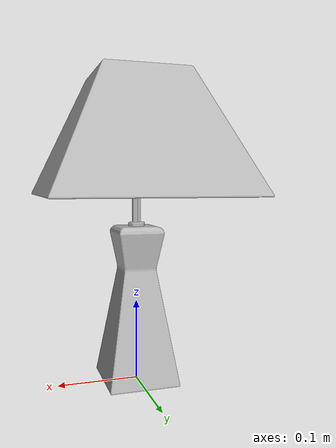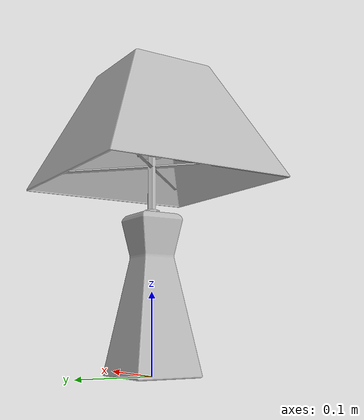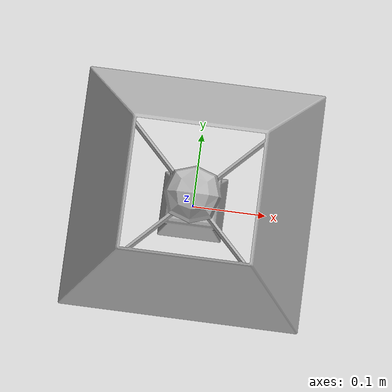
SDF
<?xml version='1.0'?>
<sdf version='1.4'>
  <model name='683'>
    <pose>0 0 0 0 0 0</pose>
    <static>true</static>
    <link name='link'>
      <collision name='collision'>
        <pose>0 0 0 0 0 0</pose>
        <geometry>
          <box>
            <size>0.238466 0.238466 2</size>
          </box>
        </geometry>
      </collision>
      <visual name='visual'>
        <pose>0 0 0 0 0 0</pose>
        <geometry>
          <mesh><uri>model://683/683.dae</uri></mesh>
        </geometry>
      </visual>
    </link>
  </model>
</sdf>
